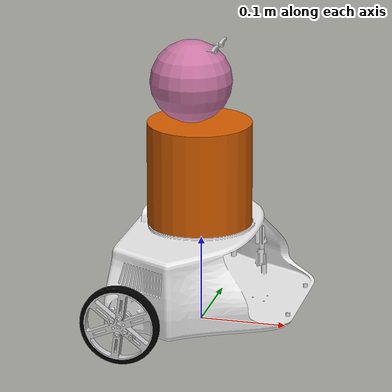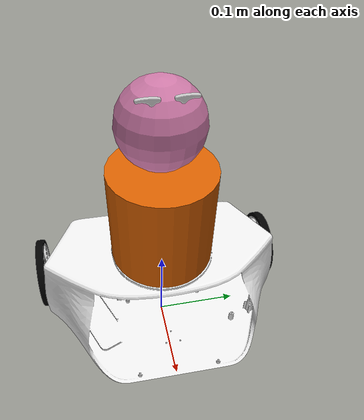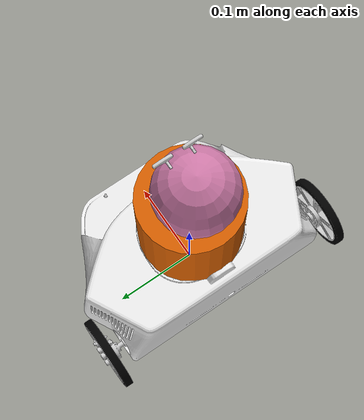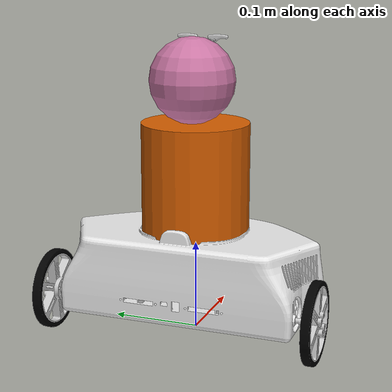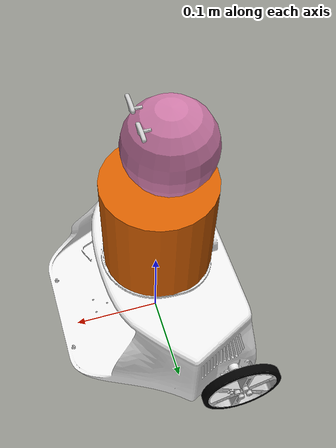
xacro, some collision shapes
<?xml version="1.0"?>

<robot name="botmovil"
       xmlns:sensor="http://playerstage.sourceforge.net/gazebo/xmlschema/#sensor"
       xmlns:controller="http://playerstage.sourceforge.net/gazebo/xmlschema/#controller"
       xmlns:interface="http://playerstage.sourceforge.net/gazebo/xmlschema/#interface"
       xmlns:xacro="http://ros.org/wiki/xacro">

  <!-- Included URDF Files -->
  <include filename="$(find botmovil_description)/urdf/botmovil_base.xacro" />
  <include filename="$(find botmovil_description)/urdf/aisoy1_feetless.xacro" />

  <!-- Body of Botmovil (including sim sensors) -->
  <botmovil />

  <!-- AISoy1 without feet -->
  <aisoy1_feetless/>

</robot>

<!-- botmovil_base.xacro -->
<robot
    xmlns:sensor="http://playerstage.sourceforge.net/gazebo/xmlschema/#sensor"
    xmlns:controller="http://playerstage.sourceforge.net/gazebo/xmlschema/#controller"
    xmlns:interface="http://playerstage.sourceforge.net/gazebo/xmlschema/#interface">

    <!-- Included URDF Files -->
    <include filename="$(find botmovil_description)/urdf/materials.urdf.xacro" />
    <include filename="$(find botmovil_description)/urdf/botmovil_wheel.xacro" />
    <include filename="$(find botmovil_description)/urdf/gazebo.urdf.xacro"/>

    <macro name="botmovil">
        <!-- base_footprint is a fictitious link(frame) that is on the ground right below base_link origin,
             navigation stack depends on this frame -->
        <link name="base_footprint">
            <inertial>
                <mass value="0.0001" />
                <origin xyz="0 0 0" />
                <inertia ixx="0.0001" ixy="0.0" ixz="0.0"
                         iyy="0.0001" iyz="0.0"
                         izz="0.0001" />
            </inertial>

            <visual>
                <origin xyz="0 0 0" rpy="0 0 0" />
                <geometry>
                    <box size="0.001 0.001 0.001" />
                </geometry>
                <material name="Green" />
            </visual>

            <collision>
                <origin xyz="0 0 0.027615" rpy="0 0 0" />
                <geometry>
                  <box size="0.001 0.001 0.001" />
                </geometry>
            </collision>
        </link>

        <joint name="base_footprint_joint" type="fixed">
            <origin xyz="0 0 0.027615" rpy="0 0 0" />
            <parent link="base_footprint"/>
            <child link="base_link" />
        </joint>

        <!-- Links and Joints (i.e., the robot) -->
        <link name="base_link">
            <inertial>
                <mass value="1.35826" />
                <origin xyz="-0.01660 -0.00328 0.03108" />
                <inertia ixx="0.01125276766" ixy="-0.00010244389" ixz="-0.00022445513"
                         iyy="0.00458462921" iyz="0.00008426529"
                         izz="0.01359327745" />
            </inertial>

            <visual>
                <origin xyz="0 0 0" rpy="0 0 0" />
                <geometry>
                    <mesh filename="package://botmovil_description/meshes/collada/botmovil_base_link.dae"/>
                </geometry>
                <material name="White" />
            </visual>

            <collision>
                <origin xyz="0.015 0.0 0.06" rpy="0 0 0" />
                <geometry>
                    <box size="0.182 0.27 0.12"/>
                </geometry>
            </collision>
        </link>

	<!-- Components (battery, computer, controller), just visual -->
	<!-- Activate if base_link uses STL instead of .dae to improve render in rviz -->

  <joint name="front_castor_joint" type="fixed">
    <origin xyz="0.07113183 0 0" rpy="0 0 0"/>
    <parent link="base_link"/>
    <child link="front_wheel_link"/>
    <axis xyz="0 1 0"/>
  </joint>

  <link name="front_wheel_link">
    <inertial>
      <origin xyz="0 0 -0.0111444" />
      <mass value="0.0180356" />
      <inertia ixx="0.0000017" ixy="0.0" ixz="0.0"
        iyy="0.0000017" iyz="0.0" izz="0.0000016" />
    </inertial>

    <visual>
      <origin xyz="0 0 0" rpy="0 0 0"/>
      <geometry>
        <mesh filename="package://botmovil_description/meshes/collada/botmovil_caster_wheel_link.dae"/>
      </geometry>
    </visual>

    <collision>
      <origin xyz="0 0 -0.014915" rpy="0 0 0" />
      <geometry>
        <sphere radius="0.0127" />
      </geometry>
    </collision>
  </link>

        <!-- Wheels instantation -->

        <botmovil_wheel suffix="left" parent="base_link">
            <origin xyz="-0.05354817 0.15196129 0.017385" rpy="0 0 0" />
	    <origin xyz="0.0000409 -0.0014066 0.0000109"/>
	    <origin xyz="0 0 0" rpy="0 0 0" />
	    <origin xyz="0 0 0" rpy="0 1.5708 1.5708" />
        </botmovil_wheel>

        <botmovil_wheel suffix="right" parent="base_link">
            <origin xyz="-0.05354817 -0.15196129 0.017385" rpy="0 0 0" />
	    <origin xyz="0.0000409 0.0014066 0.0000109"/>
	    <origin xyz="0 0 0" rpy="3.14159 0 0" />
	    <origin xyz="0 0 0" rpy="0 1.5708 1.5708" />
        </botmovil_wheel>

    <!-- Gazebo simulated sensors -->
    <botmovil_base_gazebo />

    </macro>
</robot>

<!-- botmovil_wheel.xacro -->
<robot
    xmlns:sensor="http://playerstage.sourceforge.net/gazebo/xmlschema/#sensor"
    xmlns:controller="http://playerstage.sourceforge.net/gazebo/xmlschema/#controller"
    xmlns:interface="http://playerstage.sourceforge.net/gazebo/xmlschema/#interface">

    <macro name="botmovil_wheel" params="suffix parent *origin *origin2 *origin3 *origin4">
        <joint name="${parent}_${suffix}_wheel_joint" type="continuous">
            <insert_block name="origin" />
            <axis xyz="0 1 0" />
            <anchor xyz="0 0 0" />
            <limit effort="100" velocity="100" />
            <joint_properties damping="0.0" friction="0.0" />
            <parent link="${parent}" />
            <child link="${parent}_${suffix}_wheel_link" />
        </joint>

        <link name="${parent}_${suffix}_wheel_link">
            <inertial>
                <mass value="0.0520915" />
                <insert_block name="origin2" />
                <inertia  ixx="0.01125276766" ixy="-0.00010244389" ixz="-0.00022445513"
                          iyy="0.00458462921" iyz="0.00008426529"
                          izz="0.01359327745" />
            </inertial>

            <visual>
                <insert_block name="origin3" />
                <geometry>
                    <mesh filename="package://botmovil_description/meshes/collada/botmovil_wheel_link.dae"/>
                </geometry>
            </visual>

            <collision>
                <insert_block name="origin4" />
                <geometry>
                    <cylinder radius="0.045" length = "0.015"/>
                </geometry>
            </collision>
        </link>

        <gazebo reference="${parent}_${suffix}_wheel_link" >
            <mu1 value="100.0" />
            <mu2 value="100.0" />
            <kp  value="1000000.0" />
            <kd  value="1.0" />
        </gazebo>

        <transmission type="pr2_mechanism_model/SimpleTransmission" name="${parent}_${suffix}_wheel_trans">
            <actuator name="${parent}_${suffix}_wheel_motor" />
            <joint name="${parent}_${suffix}_wheel_joint" />
            <mechanicalReduction>1.0</mechanicalReduction>
        </transmission>
    </macro>
</robot>

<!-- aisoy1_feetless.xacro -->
<robot xmlns:xacro="http://ros.org/wiki/xacro">

  <property name="M_PI" value="3.14159"/>

  <!-- Macro for AISoy1 without feet -->
  <xacro:macro name="aisoy1_feetless">

  <joint name="aisoy_base_joint" type="fixed">
    <origin xyz="0.03146297 0 0.08943" rpy="0 0 0" />
    <parent link="base_link"/>
    <child link="aisoy_base_link" />
  </joint>

  <link name="aisoy_base_link">
    <inertial>
      <mass value="0.8719666" />
      <origin xyz="-0.0367783 -0.0001796 0.0401515" />
      <inertia ixx="0.0023358" ixy="-0.0000055" ixz="-0.0001764"
        iyy="0.0024065" iyz="0.0000061" izz="0.0017460" />
    </inertial>

    <visual>
      <origin xyz="0 0 0" rpy="0 0 0" />
      <geometry>
        <mesh filename="package://botmovil_description/meshes/collada/aisoy1_torso_feetless.dae"/>
      </geometry>
    </visual>

    <collision>
      <origin xyz="-0.0332797 0.0 0.0605" rpy="0 0 0" />
      <geometry>
        <cylinder length="0.121" radius="0.06"/>
      </geometry>
    </collision>
  </link>

  <joint name="base_head_joint" type="revolute">
    <origin xyz="-0.043 0.0 0.121" rpy="0 0 0" />
    <axis xyz="0 0 1"/>
    <limit effort="10.0" lower="${M_PI/-2}" upper="${M_PI/2}" velocity="${M_PI}"/>
    <calibration rising="0.0"/>
    <parent link="aisoy_base_link"/>
    <child link="head_link" />
  </joint>

  <link name="head_link">
    <inertial>
      <mass value="0.1134772" />
      <origin xyz="-0.0016012 0.0003076 0.0592513" />
      <inertia ixx="0.0004418" ixy="-0.0000033" ixz="-0.0000301"
        iyy="0.0003612" iyz="-0.0000008" izz="0.0004281" />
    </inertial>

    <visual>
      <origin xyz="0.043 0 -0.121" rpy="0 0 0" />
      <geometry>
        <mesh filename="package://aisoy_description/meshes/head/head.dae"/>
      </geometry>
    </visual>

    <collision>
      <origin xyz="-0.0 0.0 0.047" rpy="0 0 0" />
      <geometry>
        <sphere radius="0.047"/>
      </geometry>
    </collision>

  </link>

  <joint name="head_eyebrow_l_joint" type="revolute">
    <origin xyz="0.030 0.012 0.08681" rpy="0 0 0" />
    <axis xyz="1 0 0"/>
    <limit effort="10.0" lower="${M_PI/-6}" upper="${M_PI/8}" velocity="${M_PI}"/>
    <calibration rising="0.0"/>
    <parent link="head_link"/>
    <child link="eyebrow_l_link" />
  </joint>

  <link name="eyebrow_l_link">
    <inertial>
      <mass value="0.0044168" />
      <origin xyz="0.0014088 0.0043205 0.0030777" />
      <inertia ixx="0.0000002" ixy="0.0" ixz="0.0"
        iyy="0.0" iyz="0.0" izz="0.0000002" />
    </inertial>

    <visual>
      <origin xyz="0.013 -0.012 -0.20781" rpy="0 0 0" />
      <geometry>
        <mesh filename="package://aisoy_description/meshes/eyebrow/eyebrow_l.dae"/>
      </geometry>
    </visual>

    <collision>
      <origin xyz="-0.0 0.005 0.002" rpy="0 0 0" />
      <geometry>
        <box size="0.004 0.023 0.004" />
      </geometry>
    </collision>

  </link>

  <joint name="head_eyebrow_r_joint" type="revolute">
    <origin xyz="0.030 -0.012 0.08681" rpy="0 0 0" />
    <axis xyz="-1 0 0"/>
    <limit effort="10.0" lower="${M_PI/-6}" upper="${M_PI/8}" velocity="${M_PI}"/>
    <calibration rising="0.0"/>
    <parent link="head_link"/>
    <child link="eyebrow_r_link" />
  </joint>

  <link name="eyebrow_r_link">
    <inertial>
      <mass value="0.0044168" />
      <origin xyz="0.0014088 -0.0043205 0.0030777" />
      <inertia ixx="0.0000002" ixy="0.0" ixz="0.0"
        iyy="0.0" iyz="0.0" izz="0.0000002" />
    </inertial>

    <visual>
      <origin xyz="0.013 0.012 -0.20781" rpy="0 0 0" />
      <geometry>
        <mesh filename="package://aisoy_description/meshes/eyebrow/eyebrow_r.dae"/>
      </geometry>
    </visual>

    <collision>
      <origin xyz="-0.0 -0.005 0.002" rpy="0 0 0" />
      <geometry>
        <box size="0.004 0.023 0.004" />
      </geometry>
    </collision>

  </link>

  </xacro:macro>

</robot>
